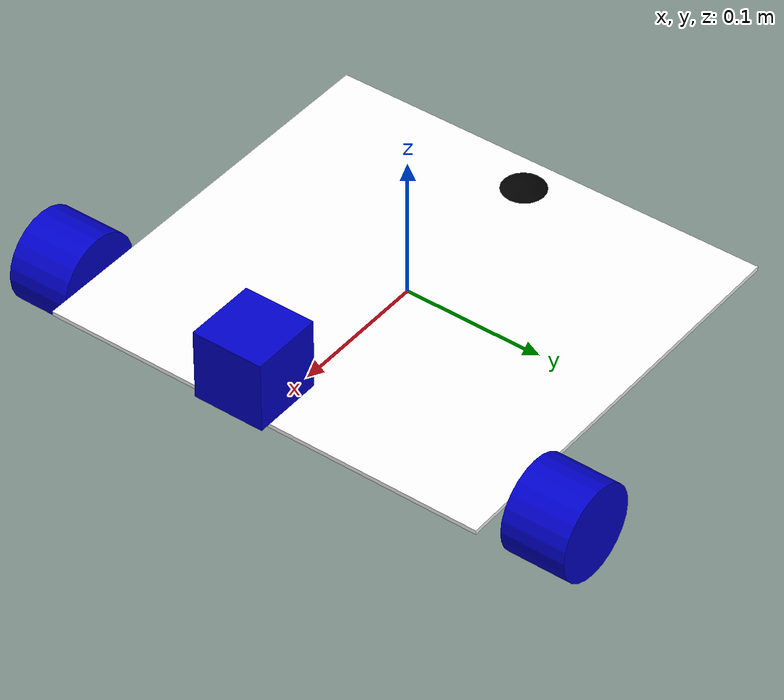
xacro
<?xml version="1.0"?>
<robot name="differential_wheeled_robot" xmlns:xacro="http://www.ros.org/wiki/xacro">
  <!-- Include files -->

  <!-- Arguments -->
  <xacro:arg name="robot_namespace" default="/" />

  <!-- Defining the colors used in this robot -->
  <material name="Black">
    <color rgba="0.0 0.0 0.0 1.0"/>
  </material>
  <material name="Red">
    <color rgba="0.8 0.0 0.0 1.0"/>
  </material>
  <material name="White">
    <color rgba="1.0 1.0 1.0 1.0"/>
  </material>
  <material name="Blue">
    <color rgba="0.0 0.0 0.8 1.0"/>
  </material>

  <!-- Property list -->
  <xacro:property name="base_size_x" value="0.295"/>
  <xacro:property name="base_size_y" value="0.320"/>
  <xacro:property name="base_size_z" value="0.003"/>
  <xacro:property name="base_mass" value="1.000"/>

  <xacro:property name="wheel_radius" value="0.0325"/>
  <xacro:property name="wheel_width" value="0.045"/>
  <xacro:property name="wheel_offset_x" value="0.050"/>
  <xacro:property name="wheel_offset_y" value="0.005"/>
  <xacro:property name="wheel_offset_z" value="-0.010"/>
  <xacro:property name="wheel_mass" value="0.500"/>

  <xacro:property name="caster_radius" value="0.025"/>
  <xacro:property name="caster_offset_z" value="0.018"/>
  <xacro:property name="caster_mass" value="0.050"/>

  <!-- PROPERTY LIST -->
  <!--All units in m-kg-s-radians unit system -->
  <property name="M_PI" value="3.1415926535897931" />
  <property name="M_PI_2" value="1.570796327" />
  <property name="DEG_TO_RAD" value="0.017453293" />

  <!-- Hokuyo Laser scanner -->
  <property name="hokuyo_size" value="0.05" />

  <!-- Inertia macro's -->
  <xacro:macro name="box_inertia" params="m x y z">
    <inertia ixx="${m*(y*y+z*z)/12}" ixy="0" ixz="0"
             iyy="${m*(x*x+z*z)/12}" iyz="0"
             izz="${m*(x*x+z*z)/12}"
    />
  </xacro:macro>
  <xacro:macro name="cylinder_inertia" params="m r h">
    <inertia ixx="${m*(3*r*r+h*h)/12}" ixy="0" ixz="0"
             iyy="${m*(3*r*r+h*h)/12}" iyz="0"
             izz="${m*r*r/2}"
    />
  </xacro:macro>
  <xacro:macro name="sphere_inertia" params="m r">
    <inertia ixx="${2*m*r*r/5}" ixy="0" ixz="0"
             iyy="${2*m*r*r/5}" iyz="0"
             izz="${2*m*r*r/5}"
    />
  </xacro:macro>

  <!-- Base link -->
  <link name="base_link">
    <visual>
      <origin xyz="0 0 0" rpy="0 0 0"/>
      <geometry>
        <box size="${base_size_x} ${base_size_y} ${base_size_z}"/>
      </geometry>
      <material name="White"/>
    </visual>
    <collision>
      <origin xyz="0 0 0" rpy="0 0 0"/>
      <geometry>
        <box size="${base_size_x} ${base_size_y} ${base_size_z}"/>
      </geometry>
    </collision>
    <inertial>
      <mass value="${base_mass}"/>
      <origin xyz="0 0 0"/>
      <box_inertia m="${base_mass}" x="${base_size_x}" y="${base_size_y}" z="${base_size_z}"/>
    </inertial>
  </link>
  <gazebo reference="base_link">
    <material>Gazebo/White</material>
    <turnGravityOff>false</turnGravityOff>
  </gazebo>

  <!-- base_footprint is a fictitious link(frame) that is on the ground right below base_link origin -->
  <link name="base_footprint">
    <inertial>
      <mass value="0.0001" />
      <origin xyz="0 0 0" />
      <inertia ixx="0.0001" ixy="0.0" ixz="0.0"
               iyy="0.0001" iyz="0.0"
               izz="0.0001"
      />
    </inertial>
    <visual>
        <origin xyz="0 0 0" rpy="0 0 0"/>
        <geometry>
            <box size="0.001 0.001 0.001"/>
        </geometry>
    </visual>
  </link>
  <gazebo reference="base_footprint">
    <turnGravityOff>false</turnGravityOff>
  </gazebo>
  <joint name="base_footprint_joint" type="fixed">
    <origin xyz="0 0 ${-wheel_radius+wheel_offset_z}" rpy="0 0 0"/>
    <parent link="base_link"/>
    <child link="base_footprint"/>
  </joint>

  <!--Caster wheel -->
  <link name="caster_link">
    <visual>
      <origin xyz="0 0. 0" rpy="0 0 0"/>
      <geometry>
	      <sphere radius="${caster_radius}"/>
      </geometry>
      <material name="Black"/>
    </visual>
    <collision>
      <origin xyz="0 0 0" rpy="0 0 0"/>
      <geometry>
		    <sphere radius="${caster_radius}"/>
      </geometry>
    </collision>
    <inertial>
      <mass value="${caster_mass}"/>
      <origin xyz="0 0 0"/>
      <inertia ixx="0.001" ixy="0.0" ixz="0.0"
               iyy="0.001" iyz="0.0"
               izz="0.001"
      />
    </inertial>
  </link>
  <joint name="caster_joint" type="fixed">
    <origin xyz="${(-base_size_x/2)+caster_radius} 0 ${-caster_offset_z}" rpy="0 0 0"/>
    <parent link="base_link"/>
    <child link="caster_link"/>
  </joint>
  <gazebo reference="caster_link">
    <turnGravityOff>false</turnGravityOff>
  </gazebo>

  <!-- Left wheel -->
  <link name="left_wheel">
    <visual>
      <origin xyz="0 0 0" rpy="${M_PI/2} 0 0"/>
      <geometry>
        <cylinder length="${wheel_width}" radius="${wheel_radius}"/>
      </geometry>
      <material name="Blue"/>
    </visual>
    <collision>
      <origin xyz="0 0 0" rpy="${M_PI/2} 0 0"/>
      <geometry>
        <cylinder length="${wheel_width}" radius="${wheel_radius}"/>
      </geometry>
    </collision>
    <inertial>
      <mass value="${wheel_mass}"/>
      <origin xyz="0 0 0"/>
      <cylinder_inertia m="${wheel_mass}" r="${wheel_radius}" h="${wheel_width}"/>
    </inertial>
  </link>
  <joint name="left_wheel_joint" type="continuous">
    <origin xyz="${(base_size_x/2)-wheel_offset_x} ${(base_size_y/2)+(wheel_width/2)+wheel_offset_y} ${wheel_offset_z}" rpy="0 0 0"/>
    <parent link="base_link"/>
    <child link="left_wheel"/>
    <axis xyz="0 1 0" rpy="0 0 0"/>
  </joint>
  <transmission name="left_wheel_joint_trans" type="SimpleTransmission">
    <type>transmission_interface/SimpleTransmission</type>
    <joint name="left_wheel_joint">
      <hardwareInterface>hardware_interface/VelocityJointInterface</hardwareInterface>
    </joint>
    <actuator name="left_wheel_joint_motor">
      <mechanicalReduction>1</mechanicalReduction>
    </actuator>
  </transmission>
  <gazebo reference="left_wheel">
    <mu1 value="1.0"/>
    <mu2 value="1.0"/>
    <kp  value="10000000.0" />
    <kd  value="1.0" />
    <fdir1 value="1 0 0"/>
    <material>Gazebo/Grey</material>
    <turnGravityOff>false</turnGravityOff>
  </gazebo>

  <!-- Right wheel -->
  <link name="right_wheel">
    <visual>
      <origin xyz="0 0 0" rpy="${M_PI/2} 0 0"/>
      <geometry>
        <cylinder length="${wheel_width}" radius="${wheel_radius}"/>
      </geometry>
      <material name="Blue"/>
    </visual>
    <collision>
      <origin xyz="0 0 0" rpy="${M_PI/2} 0 0"/>
      <geometry>
        <cylinder length="${wheel_width}" radius="${wheel_radius}"/>
      </geometry>
    </collision>
    <inertial>
      <mass value="${wheel_mass}"/>
      <origin xyz="0 0 0"/>
      <cylinder_inertia m="${wheel_mass}" r="${wheel_radius}" h="${wheel_width}"/>
    </inertial>
  </link>
  <joint name="right_wheel_joint" type="continuous">
    <origin xyz="${(base_size_x/2)-wheel_offset_x} ${(-base_size_y/2)-(wheel_width/2)-wheel_offset_y} ${wheel_offset_z}" rpy="0 0 0"/>
    <parent link="base_link"/>
    <child link="right_wheel"/>
    <axis xyz="0 1 0" rpy="0 0 0"/>
  </joint>
  <transmission name="right_wheel_joint_trans" type="SimpleTransmission">
    <type>transmission_interface/SimpleTransmission</type>
    <joint name="right_wheel_joint">
      <hardwareInterface>hardware_interface/VelocityJointInterface</hardwareInterface>
    </joint>
    <actuator name="right_wheel_joint_motor">
      <mechanicalReduction>1</mechanicalReduction>
    </actuator>
  </transmission>
  <gazebo reference="right_wheel">
    <mu1 value="1.0"/>
    <mu2 value="1.0"/>
    <kp  value="10000000.0" />
    <kd  value="1.0" />
    <fdir1 value="1 0 0"/>
    <material>Gazebo/Grey</material>
    <turnGravityOff>false</turnGravityOff>
  </gazebo>

  <!-- Sensors -->
  <link name="imu_link"/>
  <joint name="imu_joint" type="fixed">
    <origin xyz="0.0 0 0.149" rpy="0 0.0 0.0" />
    <parent link="base_link" />
    <child link="imu_link" />
  </joint>
  <gazebo reference="imu_link"/>

  <!-- Laser scanner -->
  <link name="hokuyo_link">
    <visual>
      <origin xyz="0 0 0" rpy="0 0 0" />
      <geometry>
        <box size="0.05 0.05 0.05"/>
      </geometry>
      <material name="Blue" />
    </visual>
  </link>
  <joint name="hokuyo_joint" type="fixed">
    <origin xyz="0.15 0 0.05" rpy="0 0 0" />
    <parent link="base_link"/>
    <child link="hokuyo_link" />
  </joint>

  <!-- Gazebo simulation -->
  <gazebo>
    <plugin name="gazebo_ros_control" filename="libgazebo_ros_control.so">
      <robotNamespace>$(arg robot_namespace)</robotNamespace>
    </plugin>
  </gazebo>

  <gazebo>
    <plugin name="imu_controller" filename="libhector_gazebo_ros_imu.so">
      <robotNamespace>$(arg robot_namespace)</robotNamespace>
      <updateRate>50.0</updateRate>
      <bodyName>base_link</bodyName>
      <topicName>imu/data</topicName>
      <accelDrift>0.005 0.005 0.005</accelDrift>
      <accelGaussianNoise>0.005 0.005 0.005</accelGaussianNoise>
      <rateDrift>0.005 0.005 0.005 </rateDrift>
      <rateGaussianNoise>0.005 0.005 0.005 </rateGaussianNoise>
      <headingDrift>0.005</headingDrift>
      <headingGaussianNoise>0.005</headingGaussianNoise>
    </plugin>
  </gazebo>

  <gazebo reference="hokuyo_link">
    <material>Gazebo/Blue</material>
    <turnGravityOff>false</turnGravityOff>
    <sensor type="ray" name="head_hokuyo_sensor">
      <pose>0.025 0 0 0 0 0</pose>
      <visualize>false</visualize>
      <update_rate>40</update_rate>
      <ray>
        <scan>
          <horizontal>
            <samples>720</samples>
            <resolution>1</resolution>
            <min_angle>-1.570796</min_angle>
            <max_angle>1.570796</max_angle>
          </horizontal>
        </scan>
        <range>
          <min>0.10</min>
          <max>10.0</max>
          <resolution>0.001</resolution>
        </range>
      </ray>
      <plugin name="gazebo_ros_head_hokuyo_controller" filename="libgazebo_ros_laser.so">
        <topicName>/scan</topicName>
        <frameName>hokuyo_link</frameName>
      </plugin>
    </sensor>
  </gazebo>

</robot>
